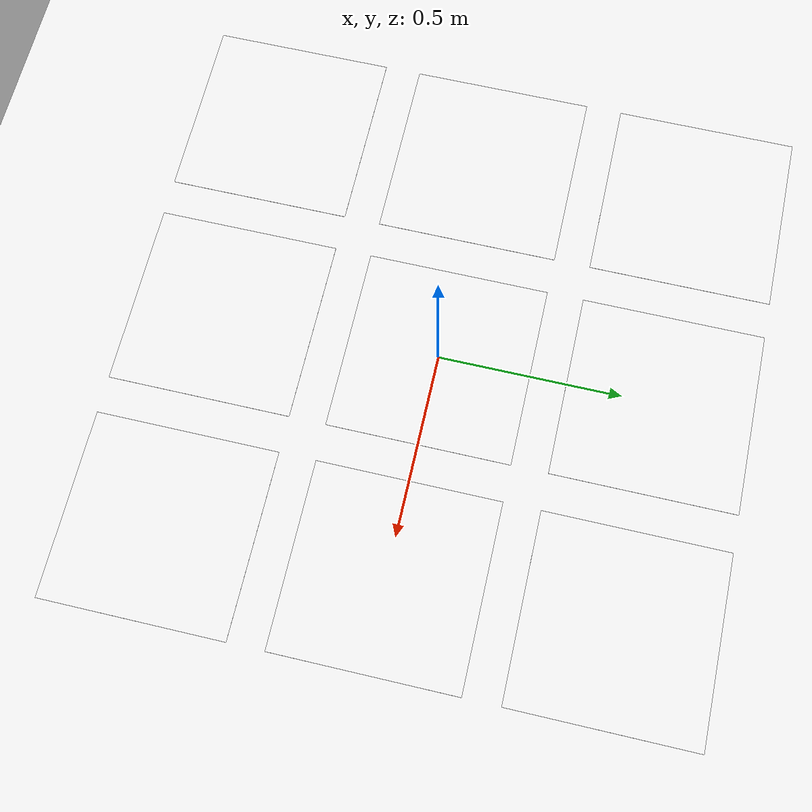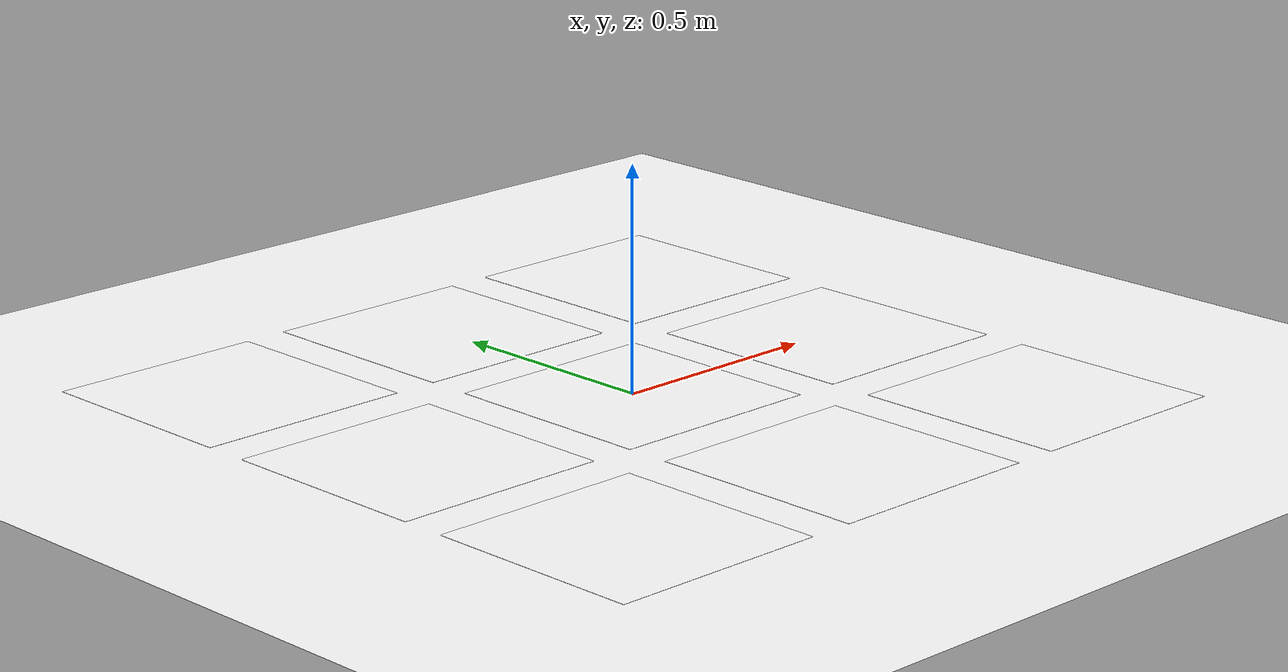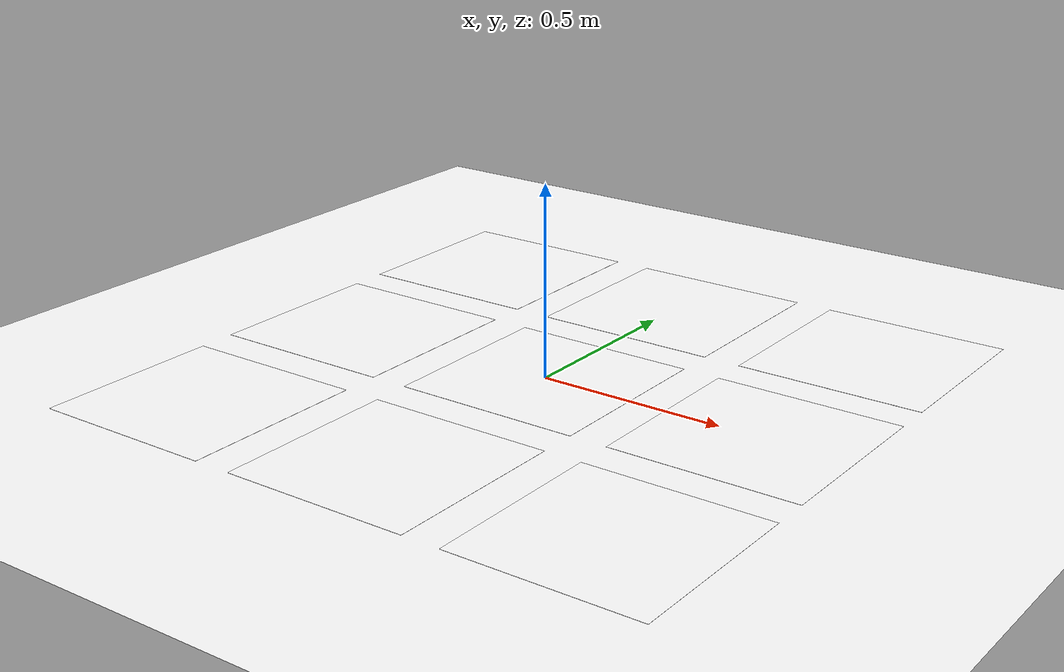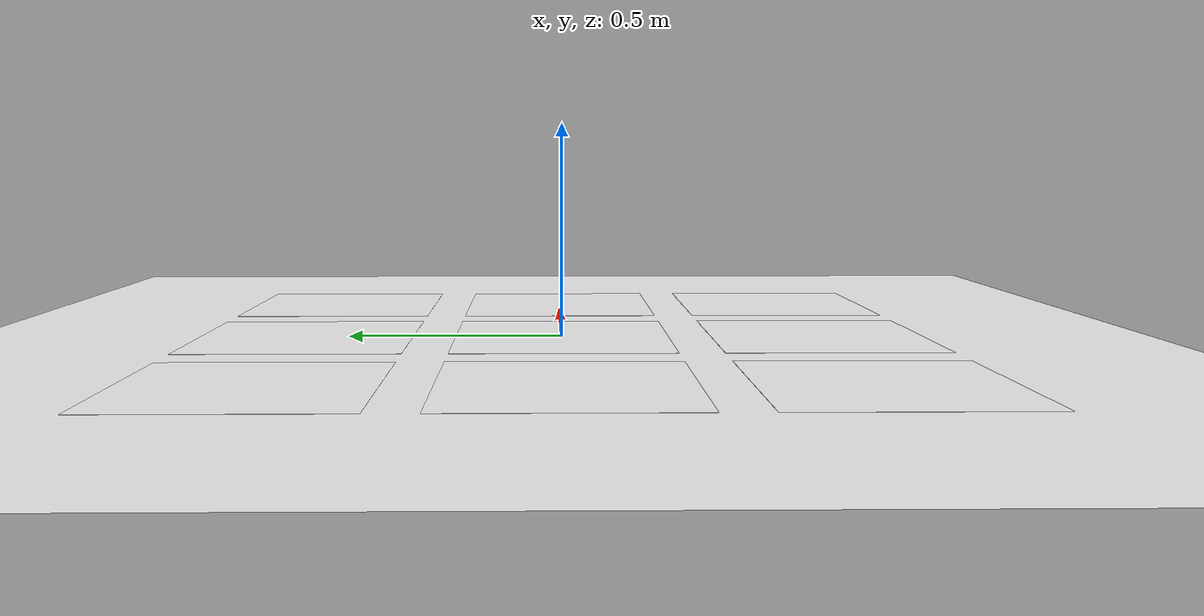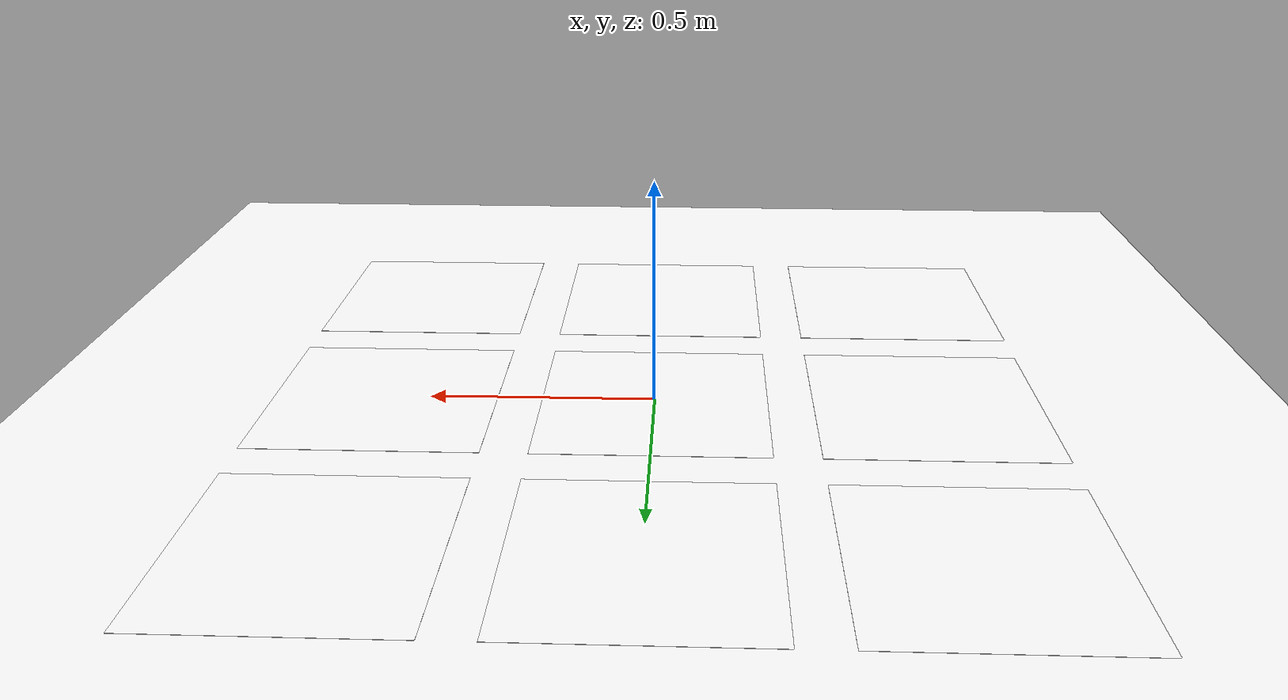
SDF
<?xml version='1.0'?>
<sdf version='1.6'>
  <model name='marker_pad_aruco'>
    <pose>0 0 0.0001 0 0 0</pose>
    <static>true</static>

    <!-- Asphalt patch -->
    <link name='marker_pad_aruco/base_link'>
      <pose>0 0 -0.0001 0 0 0</pose>
      <collision name="collision">
        <geometry>
          <plane>
            <normal>0 0 1</normal>
            <size>5 5</size>
          </plane>
        </geometry>
      </collision>
      <visual name="visual">
        <geometry>
          <plane>
            <normal>0 0 1</normal>
            <size>5 5</size>
          </plane>
        </geometry>
        <material>
          <diffuse>1 1 1 1</diffuse>
          <specular>1 1 1 1</specular>
          <pbr>
            <metal>
              <albedo_map>materials/textures/tarmac.png</albedo_map>
              <normal_map>materials/textures/tarmac.png</normal_map>
            </metal>
          </pbr>
        </material>
      </visual>
    </link>

    <!-- MARKERS -->

    <link name="marker_pad_aruco/marker_0">
    <pose>-0.6 -0.6 0 0 0 0</pose>
      <collision name="marker_pad_aruco/marker_0_collision">
        <geometry>
          <plane>
            <normal>0 0 1</normal>
            <size>0.5 0.5</size>
          </plane>
        </geometry>
      </collision>
      <visual name="marker_pad_aruco/marker_0_visual">
        <geometry>
          <plane>
            <normal>0 0 1</normal>
            <size>0.5 0.5</size>
          </plane>
        </geometry>
        <material>
          <diffuse>1 1 1 1</diffuse>
          <specular>1 1 1 1</specular>
          <pbr>
            <metal>
              <albedo_map>materials/textures/markers/101.png</albedo_map>
              <normal_map>materials/textures/markers/101.png</normal_map>
            </metal>
          </pbr>
        </material>
      </visual>
    </link>
    <joint name="marker_pad_aruco/marker_0_joint" type="fixed">
      <parent>marker_pad_aruco/base_link</parent>
      <child>marker_pad_aruco/marker_0</child>
    </joint>

    <link name="marker_pad_aruco/marker_1">
    <pose>0 -0.6 0 0 0 0</pose>
      <collision name="marker_pad_aruco/marker_1_collision">
        <geometry>
          <plane>
            <normal>0 0 1</normal>
            <size>0.5 0.5</size>
          </plane>
        </geometry>
      </collision>
      <visual name="marker_pad_aruco/marker_1_visual">
        <geometry>
          <plane>
            <normal>0 0 1</normal>
            <size>0.5 0.5</size>
          </plane>
        </geometry>
        <material>
          <diffuse>1 1 1 1</diffuse>
          <specular>1 1 1 1</specular>
          <pbr>
            <metal>
              <albedo_map>materials/textures/markers/102.png</albedo_map>
              <normal_map>materials/textures/markers/102.png</normal_map>
            </metal>
          </pbr>
        </material>
      </visual>
    </link>
    <joint name="marker_pad_aruco/marker_1_joint" type="fixed">
      <parent>marker_pad_aruco/base_link</parent>
      <child>marker_pad_aruco/marker_1</child>
    </joint>

    <link name="marker_pad_aruco/marker_2">
    <pose>0.6 -0.6 0 0 0 0</pose>
      <collision name="marker_pad_aruco/marker_2_collision">
        <geometry>
          <plane>
            <normal>0 0 1</normal>
            <size>0.5 0.5</size>
          </plane>
        </geometry>
      </collision>
      <visual name="marker_pad_aruco/marker_2_visual">
        <geometry>
          <plane>
            <normal>0 0 1</normal>
            <size>0.5 0.5</size>
          </plane>
        </geometry>
        <material>
          <diffuse>1 1 1 1</diffuse>
          <specular>1 1 1 1</specular>
          <pbr>
            <metal>
              <albedo_map>materials/textures/markers/103.png</albedo_map>
              <normal_map>materials/textures/markers/103.png</normal_map>
            </metal>
          </pbr>
        </material>
      </visual>
    </link>
    <joint name="marker_pad_aruco/marker_2_joint" type="fixed">
      <parent>marker_pad_aruco/base_link</parent>
      <child>marker_pad_aruco/marker_2</child>
    </joint>

    <link name="marker_pad_aruco/marker_3">
    <pose>-0.6 0 0 0 0 0</pose>
      <collision name="marker_pad_aruco/marker_3_collision">
        <geometry>
          <plane>
            <normal>0 0 1</normal>
            <size>0.5 0.5</size>
          </plane>
        </geometry>
      </collision>
      <visual name="marker_pad_aruco/marker_3_visual">
        <geometry>
          <plane>
            <normal>0 0 1</normal>
            <size>0.5 0.5</size>
          </plane>
        </geometry>
        <material>
          <diffuse>1 1 1 1</diffuse>
          <specular>1 1 1 1</specular>
          <pbr>
            <metal>
              <albedo_map>materials/textures/markers/104.png</albedo_map>
              <normal_map>materials/textures/markers/104.png</normal_map>
            </metal>
          </pbr>
        </material>
      </visual>
    </link>
    <joint name="marker_pad_aruco/marker_3_joint" type="fixed">
      <parent>marker_pad_aruco/base_link</parent>
      <child>marker_pad_aruco/marker_3</child>
    </joint>

    <link name="marker_pad_aruco/marker_4">
    <pose>0 0 0 0 0 0</pose>
      <collision name="marker_pad_aruco/marker_4_collision">
        <geometry>
          <plane>
            <normal>0 0 1</normal>
            <size>0.5 0.5</size>
          </plane>
        </geometry>
      </collision>
      <visual name="marker_pad_aruco/marker_4_visual">
        <geometry>
          <plane>
            <normal>0 0 1</normal>
            <size>0.5 0.5</size>
          </plane>
        </geometry>
        <material>
          <diffuse>1 1 1 1</diffuse>
          <specular>1 1 1 1</specular>
          <pbr>
            <metal>
              <albedo_map>materials/textures/markers/105.png</albedo_map>
              <normal_map>materials/textures/markers/105.png</normal_map>
            </metal>
          </pbr>
        </material>
      </visual>
    </link>
    <joint name="marker_pad_aruco/marker_4_joint" type="fixed">
      <parent>marker_pad_aruco/base_link</parent>
      <child>marker_pad_aruco/marker_4</child>
    </joint>

    <link name="marker_pad_aruco/marker_5">
    <pose>0.6 0 0 0 0 0</pose>
      <collision name="marker_pad_aruco/marker_5_collision">
        <geometry>
          <plane>
            <normal>0 0 1</normal>
            <size>0.5 0.5</size>
          </plane>
        </geometry>
      </collision>
      <visual name="marker_pad_aruco/marker_5_visual">
        <geometry>
          <plane>
            <normal>0 0 1</normal>
            <size>0.5 0.5</size>
          </plane>
        </geometry>
        <material>
          <diffuse>1 1 1 1</diffuse>
          <specular>1 1 1 1</specular>
          <pbr>
            <metal>
              <albedo_map>materials/textures/markers/106.png</albedo_map>
              <normal_map>materials/textures/markers/106.png</normal_map>
            </metal>
          </pbr>
        </material>
      </visual>
    </link>
    <joint name="marker_pad_aruco/marker_5_joint" type="fixed">
      <parent>marker_pad_aruco/base_link</parent>
      <child>marker_pad_aruco/marker_5</child>
    </joint>

    <link name="marker_pad_aruco/marker_6">
    <pose>-0.6 0.6 0 0 0 0</pose>
      <collision name="marker_pad_aruco/marker_6_collision">
        <geometry>
          <plane>
            <normal>0 0 1</normal>
            <size>0.5 0.5</size>
          </plane>
        </geometry>
      </collision>
      <visual name="marker_pad_aruco/marker_6_visual">
        <geometry>
          <plane>
            <normal>0 0 1</normal>
            <size>0.5 0.5</size>
          </plane>
        </geometry>
        <material>
          <diffuse>1 1 1 1</diffuse>
          <specular>1 1 1 1</specular>
          <pbr>
            <metal>
              <albedo_map>materials/textures/markers/107.png</albedo_map>
              <normal_map>materials/textures/markers/107.png</normal_map>
            </metal>
          </pbr>
        </material>
      </visual>
    </link>
    <joint name="marker_pad_aruco/marker_6_joint" type="fixed">
      <parent>marker_pad_aruco/base_link</parent>
      <child>marker_pad_aruco/marker_6</child>
    </joint>

    <link name="marker_pad_aruco/marker_7">
    <pose>0 0.6 0 0 0 0</pose>
      <collision name="marker_pad_aruco/marker_7_collision">
        <geometry>
          <plane>
            <normal>0 0 1</normal>
            <size>0.5 0.5</size>
          </plane>
        </geometry>
      </collision>
      <visual name="marker_pad_aruco/marker_7_visual">
        <geometry>
          <plane>
            <normal>0 0 1</normal>
            <size>0.5 0.5</size>
          </plane>
        </geometry>
        <material>
          <diffuse>1 1 1 1</diffuse>
          <specular>1 1 1 1</specular>
          <pbr>
            <metal>
              <albedo_map>materials/textures/markers/108.png</albedo_map>
              <normal_map>materials/textures/markers/108.png</normal_map>
            </metal>
          </pbr>
        </material>
      </visual>
    </link>
    <joint name="marker_pad_aruco/marker_7_joint" type="fixed">
      <parent>marker_pad_aruco/base_link</parent>
      <child>marker_pad_aruco/marker_7</child>
    </joint>

    <link name="marker_pad_aruco/marker_8">
    <pose>0.6 0.6 0 0 0 0</pose>
      <collision name="marker_pad_aruco/marker_8_collision">
        <geometry>
          <plane>
            <normal>0 0 1</normal>
            <size>0.5 0.5</size>
          </plane>
        </geometry>
      </collision>
      <visual name="marker_pad_aruco/marker_8_visual">
        <geometry>
          <plane>
            <normal>0 0 1</normal>
            <size>0.5 0.5</size>
          </plane>
        </geometry>
        <material>
          <diffuse>1 1 1 1</diffuse>
          <specular>1 1 1 1</specular>
          <pbr>
            <metal>
              <albedo_map>materials/textures/markers/109.png</albedo_map>
              <normal_map>materials/textures/markers/109.png</normal_map>
            </metal>
          </pbr>
        </material>
      </visual>
    </link>
    <joint name="marker_pad_aruco/marker_8_joint" type="fixed">
      <parent>marker_pad_aruco/base_link</parent>
      <child>marker_pad_aruco/marker_8</child>
    </joint>

  </model>
</sdf>
